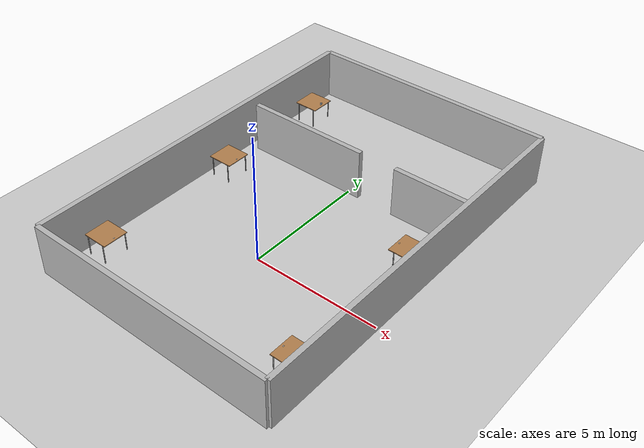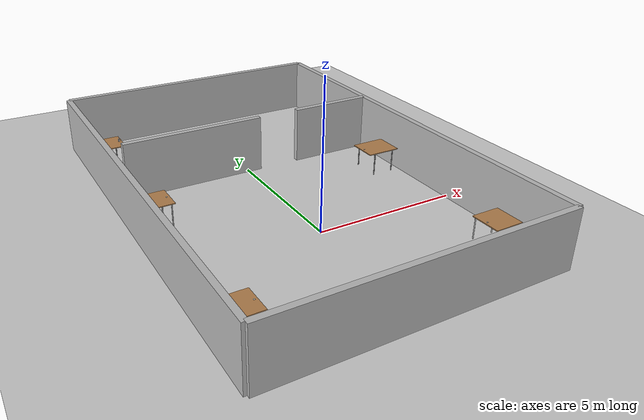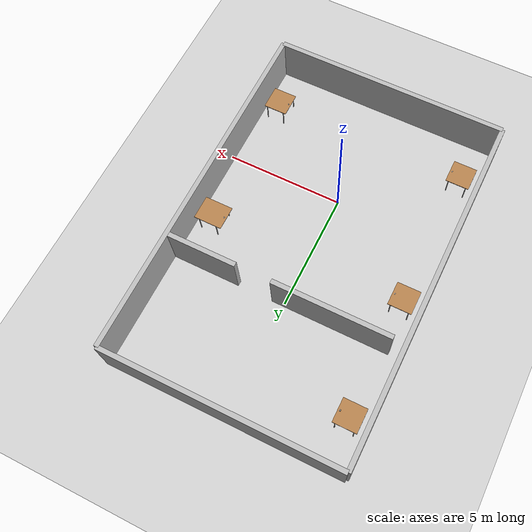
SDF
<?xml version="1.0" ?>
<sdf version="1.4">
  <world name="default">
    <physics type="ode">
      <gravity>0 0 -9.81</gravity>
      <ode>
        <solver>
          <type>quick</type>
          <iters>20</iters>
          <sor>1.0</sor>
        </solver>
        <constraints>
          <cfm>0.0</cfm>
          <erp>0.2</erp>
          <contact_max_correcting_vel>100.0</contact_max_correcting_vel>
          <contact_surface_layer>0.0</contact_surface_layer>
        </constraints>
      </ode>
      <real_time_update_rate>1000</real_time_update_rate>
      <max_step_size>0.001</max_step_size>
    </physics>

    <!-- A global light source -->
    <include>
      <uri>model://sun</uri>
    </include>

    <!-- A ground plane -->
    <include>
      <uri>model://ground_plane</uri>
    </include>

    <model name='office_room_table_111'>
      <static>1</static>
      <link name='link'>
        <collision name='surface'>
          <pose frame=''>0 0 0.8 0 0 0</pose>
          <geometry>
            <box>
              <size>1 1 0.03</size>
            </box>
          </geometry>
          <surface>
            <bounce/>
            <friction>
              <ode/>
              <torsional>
                <ode/>
              </torsional>
            </friction>
            <contact>
              <ode/>
            </contact>
          </surface>
          <max_contacts>10</max_contacts>
        </collision>
        <visual name='visual1'>
          <pose frame=''>0 0 0.8 0 0 0</pose>
          <geometry>
            <box>
              <size>1 1 0.03</size>
            </box>
          </geometry>
          <material>
            <script>
              <uri>file://media/materials/scripts/gazebo.material</uri>
              <name>Gazebo/Wood</name>
            </script>
          </material>
        </visual>
        <collision name='front_left_leg'>
          <pose frame=''>0.38 0.48 0.4 0 -0 0</pose>
          <geometry>
            <cylinder>
              <radius>0.02</radius>
              <length>0.8</length>
            </cylinder>
          </geometry>
          <surface>
            <bounce/>
            <friction>
              <ode/>
              <torsional>
                <ode/>
              </torsional>
            </friction>
            <contact>
              <ode/>
            </contact>
          </surface>
          <max_contacts>10</max_contacts>
        </collision>
        <visual name='front_left_leg'>
          <pose frame=''>0.38 0.48 0.4 0 -0 0</pose>
          <geometry>
            <cylinder>
              <radius>0.02</radius>
              <length>0.8</length>
            </cylinder>
          </geometry>
          <material>
            <script>
              <uri>file://media/materials/scripts/gazebo.material</uri>
              <name>Gazebo/Grey</name>
            </script>
          </material>
        </visual>
        <collision name='front_right_leg'>
          <pose frame=''>0.38 -0.48 0.4 0 -0 0</pose>
          <geometry>
            <cylinder>
              <radius>0.02</radius>
              <length>0.8</length>
            </cylinder>
          </geometry>
          <surface>
            <bounce/>
            <friction>
              <ode/>
              <torsional>
                <ode/>
              </torsional>
            </friction>
            <contact>
              <ode/>
            </contact>
          </surface>
          <max_contacts>10</max_contacts>
        </collision>
        <visual name='front_right_leg'>
          <pose frame=''>0.38 -0.48 0.4 0 -0 0</pose>
          <geometry>
            <cylinder>
              <radius>0.02</radius>
              <length>0.8</length>
            </cylinder>
          </geometry>
          <material>
            <script>
              <uri>file://media/materials/scripts/gazebo.material</uri>
              <name>Gazebo/Grey</name>
            </script>
          </material>
        </visual>
        <collision name='back_right_leg'>
          <pose frame=''>-0.38 -0.48 0.4 0 -0 0</pose>
          <geometry>
            <cylinder>
              <radius>0.02</radius>
              <length>0.8</length>
            </cylinder>
          </geometry>
          <surface>
            <bounce/>
            <friction>
              <ode/>
              <torsional>
                <ode/>
              </torsional>
            </friction>
            <contact>
              <ode/>
            </contact>
          </surface>
          <max_contacts>10</max_contacts>
        </collision>
        <visual name='back_right_leg'>
          <pose frame=''>-0.38 -0.48 0.4 0 -0 0</pose>
          <geometry>
            <cylinder>
              <radius>0.02</radius>
              <length>0.8</length>
            </cylinder>
          </geometry>
          <material>
            <script>
              <uri>file://media/materials/scripts/gazebo.material</uri>
              <name>Gazebo/Grey</name>
            </script>
          </material>
        </visual>
        <collision name='back_left_leg'>
          <pose frame=''>-0.38 0.48 0.4 0 -0 0</pose>
          <geometry>
            <cylinder>
              <radius>0.02</radius>
              <length>0.8</length>
            </cylinder>
          </geometry>
          <surface>
            <bounce/>
            <friction>
              <ode/>
              <torsional>
                <ode/>
              </torsional>
            </friction>
            <contact>
              <ode/>
            </contact>
          </surface>
          <max_contacts>10</max_contacts>
        </collision>
        <visual name='back_left_leg'>
          <pose frame=''>-0.38 0.48 0.4 0 -0 0</pose>
          <geometry>
            <cylinder>
              <radius>0.02</radius>
              <length>0.8</length>
            </cylinder>
          </geometry>
          <material>
            <script>
              <uri>file://media/materials/scripts/gazebo.material</uri>
              <name>Gazebo/Grey</name>
            </script>
          </material>
        </visual>
        <velocity_decay>
          <linear>0</linear>
          <angular>0</angular>
        </velocity_decay>
        <self_collide>0</self_collide>
        <kinematic>0</kinematic>
        <gravity>1</gravity>
        <enable_wind>0</enable_wind>
      </link>
      <pose frame=''>4.2 -3 0 0 0 0</pose>
    </model>
    <model name='aruco_marker_original_111'>
      <static>1</static>
      <link name='marker'>
        <inertial>
          <mass>0.1</mass>
          <inertia>
            <ixx>0</ixx>
            <ixy>0</ixy>
            <ixz>0</ixz>
            <iyy>0</iyy>
            <iyz>0</iyz>
            <izz>0</izz>
          </inertia>
        </inertial>
        <visual name='visual'>
          <pose frame=''>0 0 0 0 -0 1.57</pose>
          <geometry>
            <box>
              <size>0.05 0.05 0.001</size>
            </box>
          </geometry>
          <material>
            <script>
              <uri>model://aruco_marker_original_111/material/scripts</uri>
              <uri>model://aruco_marker_original_111/material/textures</uri>
              <name>Aruco/aruco_marker_original_111</name>
            </script>
          </material>
        </visual>
        <collision name='collision'>
          <geometry>
            <box>
              <size>0.05 0.05 0.001</size>
            </box>
          </geometry>
          <surface>
            <bounce/>
            <friction>
              <ode/>
              <torsional>
                <ode/>
              </torsional>
            </friction>
            <contact>
              <ode/>
            </contact>
          </surface>
          <max_contacts>10</max_contacts>
        </collision>
        <self_collide>1</self_collide>
        <kinematic>0</kinematic>
        <gravity>1</gravity>
        <enable_wind>0</enable_wind>
      </link>
      <pose frame=''>3.8 -3 0.815 0 0 0</pose>
    </model>

    <model name='office_room_table_26'>
      <static>1</static>
      <link name='link'>
        <collision name='surface'>
          <pose frame=''>0 0 0.8 0 0 0</pose>
          <geometry>
            <box>
              <size>1 1 0.03</size>
            </box>
          </geometry>
          <surface>
            <bounce/>
            <friction>
              <ode/>
              <torsional>
                <ode/>
              </torsional>
            </friction>
            <contact>
              <ode/>
            </contact>
          </surface>
          <max_contacts>10</max_contacts>
        </collision>
        <visual name='visual1'>
          <pose frame=''>0 0 0.8 0 0 0</pose>
          <geometry>
            <box>
              <size>1 1 0.03</size>
            </box>
          </geometry>
          <material>
            <script>
              <uri>file://media/materials/scripts/gazebo.material</uri>
              <name>Gazebo/Wood</name>
            </script>
          </material>
        </visual>
        <collision name='front_left_leg'>
          <pose frame=''>0.38 0.48 0.4 0 -0 0</pose>
          <geometry>
            <cylinder>
              <radius>0.02</radius>
              <length>0.8</length>
            </cylinder>
          </geometry>
          <surface>
            <bounce/>
            <friction>
              <ode/>
              <torsional>
                <ode/>
              </torsional>
            </friction>
            <contact>
              <ode/>
            </contact>
          </surface>
          <max_contacts>10</max_contacts>
        </collision>
        <visual name='front_left_leg'>
          <pose frame=''>0.38 0.48 0.4 0 -0 0</pose>
          <geometry>
            <cylinder>
              <radius>0.02</radius>
              <length>0.8</length>
            </cylinder>
          </geometry>
          <material>
            <script>
              <uri>file://media/materials/scripts/gazebo.material</uri>
              <name>Gazebo/Grey</name>
            </script>
          </material>
        </visual>
        <collision name='front_right_leg'>
          <pose frame=''>0.38 -0.48 0.4 0 -0 0</pose>
          <geometry>
            <cylinder>
              <radius>0.02</radius>
              <length>0.8</length>
            </cylinder>
          </geometry>
          <surface>
            <bounce/>
            <friction>
              <ode/>
              <torsional>
                <ode/>
              </torsional>
            </friction>
            <contact>
              <ode/>
            </contact>
          </surface>
          <max_contacts>10</max_contacts>
        </collision>
        <visual name='front_right_leg'>
          <pose frame=''>0.38 -0.48 0.4 0 -0 0</pose>
          <geometry>
            <cylinder>
              <radius>0.02</radius>
              <length>0.8</length>
            </cylinder>
          </geometry>
          <material>
            <script>
              <uri>file://media/materials/scripts/gazebo.material</uri>
              <name>Gazebo/Grey</name>
            </script>
          </material>
        </visual>
        <collision name='back_right_leg'>
          <pose frame=''>-0.38 -0.48 0.4 0 -0 0</pose>
          <geometry>
            <cylinder>
              <radius>0.02</radius>
              <length>0.8</length>
            </cylinder>
          </geometry>
          <surface>
            <bounce/>
            <friction>
              <ode/>
              <torsional>
                <ode/>
              </torsional>
            </friction>
            <contact>
              <ode/>
            </contact>
          </surface>
          <max_contacts>10</max_contacts>
        </collision>
        <visual name='back_right_leg'>
          <pose frame=''>-0.38 -0.48 0.4 0 -0 0</pose>
          <geometry>
            <cylinder>
              <radius>0.02</radius>
              <length>0.8</length>
            </cylinder>
          </geometry>
          <material>
            <script>
              <uri>file://media/materials/scripts/gazebo.material</uri>
              <name>Gazebo/Grey</name>
            </script>
          </material>
        </visual>
        <collision name='back_left_leg'>
          <pose frame=''>-0.38 0.48 0.4 0 -0 0</pose>
          <geometry>
            <cylinder>
              <radius>0.02</radius>
              <length>0.8</length>
            </cylinder>
          </geometry>
          <surface>
            <bounce/>
            <friction>
              <ode/>
              <torsional>
                <ode/>
              </torsional>
            </friction>
            <contact>
              <ode/>
            </contact>
          </surface>
          <max_contacts>10</max_contacts>
        </collision>
        <visual name='back_left_leg'>
          <pose frame=''>-0.38 0.48 0.4 0 -0 0</pose>
          <geometry>
            <cylinder>
              <radius>0.02</radius>
              <length>0.8</length>
            </cylinder>
          </geometry>
          <material>
            <script>
              <uri>file://media/materials/scripts/gazebo.material</uri>
              <name>Gazebo/Grey</name>
            </script>
          </material>
        </visual>
        <velocity_decay>
          <linear>0</linear>
          <angular>0</angular>
        </velocity_decay>
        <self_collide>0</self_collide>
        <kinematic>0</kinematic>
        <gravity>1</gravity>
        <enable_wind>0</enable_wind>
      </link>
      <pose frame=''>-4.2 -3 0 0 0 0</pose>
    </model>
    <model name='aruco_marker_original_26'>
      <static>1</static>
      <link name='marker'>
        <inertial>
          <mass>0.1</mass>
          <inertia>
            <ixx>0</ixx>
            <ixy>0</ixy>
            <ixz>0</ixz>
            <iyy>0</iyy>
            <iyz>0</iyz>
            <izz>0</izz>
          </inertia>
        </inertial>
        <visual name='visual'>
          <pose frame=''>0 0 0 0 -0 1.57</pose>
          <geometry>
            <box>
              <size>0.05 0.05 0.001</size>
            </box>
          </geometry>
          <material>
            <script>
              <uri>model://aruco_marker_original_26/material/scripts</uri>
              <uri>model://aruco_marker_original_26/material/textures</uri>
              <name>Aruco/aruco_marker_original_26</name>
            </script>
          </material>
        </visual>
        <collision name='collision'>
          <geometry>
            <box>
              <size>0.05 0.05 0.001</size>
            </box>
          </geometry>
          <surface>
            <bounce/>
            <friction>
              <ode/>
              <torsional>
                <ode/>
              </torsional>
            </friction>
            <contact>
              <ode/>
            </contact>
          </surface>
          <max_contacts>10</max_contacts>
        </collision>
        <self_collide>1</self_collide>
        <kinematic>0</kinematic>
        <gravity>1</gravity>
        <enable_wind>0</enable_wind>
      </link>
      <pose frame=''>-3.8 -3 0.815 0 0 0</pose>
    </model>

    <model name='office_room_table_63'>
      <static>1</static>
      <link name='link'>
        <collision name='surface'>
          <pose frame=''>0 0 0.8 0 0 0</pose>
          <geometry>
            <box>
              <size>1 1 0.03</size>
            </box>
          </geometry>
          <surface>
            <bounce/>
            <friction>
              <ode/>
              <torsional>
                <ode/>
              </torsional>
            </friction>
            <contact>
              <ode/>
            </contact>
          </surface>
          <max_contacts>10</max_contacts>
        </collision>
        <visual name='visual1'>
          <pose frame=''>0 0 0.8 0 0 0</pose>
          <geometry>
            <box>
              <size>1 1 0.03</size>
            </box>
          </geometry>
          <material>
            <script>
              <uri>file://media/materials/scripts/gazebo.material</uri>
              <name>Gazebo/Wood</name>
            </script>
          </material>
        </visual>
        <collision name='front_left_leg'>
          <pose frame=''>0.38 0.48 0.4 0 -0 0</pose>
          <geometry>
            <cylinder>
              <radius>0.02</radius>
              <length>0.8</length>
            </cylinder>
          </geometry>
          <surface>
            <bounce/>
            <friction>
              <ode/>
              <torsional>
                <ode/>
              </torsional>
            </friction>
            <contact>
              <ode/>
            </contact>
          </surface>
          <max_contacts>10</max_contacts>
        </collision>
        <visual name='front_left_leg'>
          <pose frame=''>0.38 0.48 0.4 0 -0 0</pose>
          <geometry>
            <cylinder>
              <radius>0.02</radius>
              <length>0.8</length>
            </cylinder>
          </geometry>
          <material>
            <script>
              <uri>file://media/materials/scripts/gazebo.material</uri>
              <name>Gazebo/Grey</name>
            </script>
          </material>
        </visual>
        <collision name='front_right_leg'>
          <pose frame=''>0.38 -0.48 0.4 0 -0 0</pose>
          <geometry>
            <cylinder>
              <radius>0.02</radius>
              <length>0.8</length>
            </cylinder>
          </geometry>
          <surface>
            <bounce/>
            <friction>
              <ode/>
              <torsional>
                <ode/>
              </torsional>
            </friction>
            <contact>
              <ode/>
            </contact>
          </surface>
          <max_contacts>10</max_contacts>
        </collision>
        <visual name='front_right_leg'>
          <pose frame=''>0.38 -0.48 0.4 0 -0 0</pose>
          <geometry>
            <cylinder>
              <radius>0.02</radius>
              <length>0.8</length>
            </cylinder>
          </geometry>
          <material>
            <script>
              <uri>file://media/materials/scripts/gazebo.material</uri>
              <name>Gazebo/Grey</name>
            </script>
          </material>
        </visual>
        <collision name='back_right_leg'>
          <pose frame=''>-0.38 -0.48 0.4 0 -0 0</pose>
          <geometry>
            <cylinder>
              <radius>0.02</radius>
              <length>0.8</length>
            </cylinder>
          </geometry>
          <surface>
            <bounce/>
            <friction>
              <ode/>
              <torsional>
                <ode/>
              </torsional>
            </friction>
            <contact>
              <ode/>
            </contact>
          </surface>
          <max_contacts>10</max_contacts>
        </collision>
        <visual name='back_right_leg'>
          <pose frame=''>-0.38 -0.48 0.4 0 -0 0</pose>
          <geometry>
            <cylinder>
              <radius>0.02</radius>
              <length>0.8</length>
            </cylinder>
          </geometry>
          <material>
            <script>
              <uri>file://media/materials/scripts/gazebo.material</uri>
              <name>Gazebo/Grey</name>
            </script>
          </material>
        </visual>
        <collision name='back_left_leg'>
          <pose frame=''>-0.38 0.48 0.4 0 -0 0</pose>
          <geometry>
            <cylinder>
              <radius>0.02</radius>
              <length>0.8</length>
            </cylinder>
          </geometry>
          <surface>
            <bounce/>
            <friction>
              <ode/>
              <torsional>
                <ode/>
              </torsional>
            </friction>
            <contact>
              <ode/>
            </contact>
          </surface>
          <max_contacts>10</max_contacts>
        </collision>
        <visual name='back_left_leg'>
          <pose frame=''>-0.38 0.48 0.4 0 -0 0</pose>
          <geometry>
            <cylinder>
              <radius>0.02</radius>
              <length>0.8</length>
            </cylinder>
          </geometry>
          <material>
            <script>
              <uri>file://media/materials/scripts/gazebo.material</uri>
              <name>Gazebo/Grey</name>
            </script>
          </material>
        </visual>
        <velocity_decay>
          <linear>0</linear>
          <angular>0</angular>
        </velocity_decay>
        <self_collide>0</self_collide>
        <kinematic>0</kinematic>
        <gravity>1</gravity>
        <enable_wind>0</enable_wind>
      </link>
      <pose frame=''>-4.2 3 0 0 0 0</pose>
    </model>
    <model name='aruco_marker_original_63'>
      <static>1</static>
      <link name='marker'>
        <inertial>
          <mass>0.1</mass>
          <inertia>
            <ixx>0</ixx>
            <ixy>0</ixy>
            <ixz>0</ixz>
            <iyy>0</iyy>
            <iyz>0</iyz>
            <izz>0</izz>
          </inertia>
        </inertial>
        <visual name='visual'>
          <pose frame=''>0 0 0 0 -0 1.57</pose>
          <geometry>
            <box>
              <size>0.05 0.05 0.001</size>
            </box>
          </geometry>
          <material>
            <script>
              <uri>model://aruco_marker_original_63/material/scripts</uri>
              <uri>model://aruco_marker_original_63/material/textures</uri>
              <name>Aruco/aruco_marker_original_63</name>
            </script>
          </material>
        </visual>
        <collision name='collision'>
          <geometry>
            <box>
              <size>0.05 0.05 0.001</size>
            </box>
          </geometry>
          <surface>
            <bounce/>
            <friction>
              <ode/>
              <torsional>
                <ode/>
              </torsional>
            </friction>
            <contact>
              <ode/>
            </contact>
          </surface>
          <max_contacts>10</max_contacts>
        </collision>
        <self_collide>1</self_collide>
        <kinematic>0</kinematic>
        <gravity>1</gravity>
        <enable_wind>0</enable_wind>
      </link>
      <pose frame=''>-3.8 3 0.815 0 0 0</pose>
    </model>

    <model name='office_room_table_238'>
      <static>1</static>
      <link name='link'>
        <collision name='surface'>
          <pose frame=''>0 0 0.8 0 0 0</pose>
          <geometry>
            <box>
              <size>1.2 1 0.03</size>
            </box>
          </geometry>
          <surface>
            <bounce/>
            <friction>
              <ode/>
              <torsional>
                <ode/>
              </torsional>
            </friction>
            <contact>
              <ode/>
            </contact>
          </surface>
          <max_contacts>10</max_contacts>
        </collision>
        <visual name='visual1'>
          <pose frame=''>0 0 0.8 0 0 0</pose>
          <geometry>
            <box>
              <size>1.2 1 0.03</size>
            </box>
          </geometry>
          <material>
            <script>
              <uri>file://media/materials/scripts/gazebo.material</uri>
              <name>Gazebo/Wood</name>
            </script>
          </material>
        </visual>
        <collision name='front_left_leg'>
          <pose frame=''>0.38 0.48 0.4 0 -0 0</pose>
          <geometry>
            <cylinder>
              <radius>0.02</radius>
              <length>0.8</length>
            </cylinder>
          </geometry>
          <surface>
            <bounce/>
            <friction>
              <ode/>
              <torsional>
                <ode/>
              </torsional>
            </friction>
            <contact>
              <ode/>
            </contact>
          </surface>
          <max_contacts>10</max_contacts>
        </collision>
        <visual name='front_left_leg'>
          <pose frame=''>0.38 0.48 0.4 0 -0 0</pose>
          <geometry>
            <cylinder>
              <radius>0.02</radius>
              <length>0.8</length>
            </cylinder>
          </geometry>
          <material>
            <script>
              <uri>file://media/materials/scripts/gazebo.material</uri>
              <name>Gazebo/Grey</name>
            </script>
          </material>
        </visual>
        <collision name='front_right_leg'>
          <pose frame=''>0.38 -0.48 0.4 0 -0 0</pose>
          <geometry>
            <cylinder>
              <radius>0.02</radius>
              <length>0.8</length>
            </cylinder>
          </geometry>
          <surface>
            <bounce/>
            <friction>
              <ode/>
              <torsional>
                <ode/>
              </torsional>
            </friction>
            <contact>
              <ode/>
            </contact>
          </surface>
          <max_contacts>10</max_contacts>
        </collision>
        <visual name='front_right_leg'>
          <pose frame=''>0.38 -0.48 0.4 0 -0 0</pose>
          <geometry>
            <cylinder>
              <radius>0.02</radius>
              <length>0.8</length>
            </cylinder>
          </geometry>
          <material>
            <script>
              <uri>file://media/materials/scripts/gazebo.material</uri>
              <name>Gazebo/Grey</name>
            </script>
          </material>
        </visual>
        <collision name='back_right_leg'>
          <pose frame=''>-0.38 -0.48 0.4 0 -0 0</pose>
          <geometry>
            <cylinder>
              <radius>0.02</radius>
              <length>0.8</length>
            </cylinder>
          </geometry>
          <surface>
            <bounce/>
            <friction>
              <ode/>
              <torsional>
                <ode/>
              </torsional>
            </friction>
            <contact>
              <ode/>
            </contact>
          </surface>
          <max_contacts>10</max_contacts>
        </collision>
        <visual name='back_right_leg'>
          <pose frame=''>-0.38 -0.48 0.4 0 -0 0</pose>
          <geometry>
            <cylinder>
              <radius>0.02</radius>
              <length>0.8</length>
            </cylinder>
          </geometry>
          <material>
            <script>
              <uri>file://media/materials/scripts/gazebo.material</uri>
              <name>Gazebo/Grey</name>
            </script>
          </material>
        </visual>
        <collision name='back_left_leg'>
          <pose frame=''>-0.38 0.48 0.4 0 -0 0</pose>
          <geometry>
            <cylinder>
              <radius>0.02</radius>
              <length>0.8</length>
            </cylinder>
          </geometry>
          <surface>
            <bounce/>
            <friction>
              <ode/>
              <torsional>
                <ode/>
              </torsional>
            </friction>
            <contact>
              <ode/>
            </contact>
          </surface>
          <max_contacts>10</max_contacts>
        </collision>
        <visual name='back_left_leg'>
          <pose frame=''>-0.38 0.48 0.4 0 -0 0</pose>
          <geometry>
            <cylinder>
              <radius>0.02</radius>
              <length>0.8</length>
            </cylinder>
          </geometry>
          <material>
            <script>
              <uri>file://media/materials/scripts/gazebo.material</uri>
              <name>Gazebo/Grey</name>
            </script>
          </material>
        </visual>
        <velocity_decay>
          <linear>0</linear>
          <angular>0</angular>
        </velocity_decay>
        <self_collide>0</self_collide>
        <kinematic>0</kinematic>
        <gravity>1</gravity>
        <enable_wind>0</enable_wind>
      </link>
      <pose frame=''>4.2 3 0 0 0 0</pose>
    </model>
    <model name='aruco_marker_original_238'>
      <static>1</static>
      <link name='marker'>
        <inertial>
          <mass>0.1</mass>
          <inertia>
            <ixx>0</ixx>
            <ixy>0</ixy>
            <ixz>0</ixz>
            <iyy>0</iyy>
            <iyz>0</iyz>
            <izz>0</izz>
          </inertia>
        </inertial>
        <visual name='visual'>
          <pose frame=''>0 0 0 0 -0 1.57</pose>
          <geometry>
            <box>
              <size>0.05 0.05 0.001</size>
            </box>
          </geometry>
          <material>
            <script>
              <uri>model://aruco_marker_original_238/material/scripts</uri>
              <uri>model://aruco_marker_original_238/material/textures</uri>
              <name>Aruco/aruco_marker_original_238</name>
            </script>
          </material>
        </visual>
        <collision name='collision'>
          <geometry>
            <box>
              <size>0.05 0.05 0.001</size>
            </box>
          </geometry>
          <surface>
            <bounce/>
            <friction>
              <ode/>
              <torsional>
                <ode/>
              </torsional>
            </friction>
            <contact>
              <ode/>
            </contact>
          </surface>
          <max_contacts>10</max_contacts>
        </collision>
        <self_collide>1</self_collide>
        <kinematic>0</kinematic>
        <gravity>1</gravity>
        <enable_wind>0</enable_wind>
      </link>
      <pose frame=''>3.7 3 0.815 0 0 0</pose>
    </model>

    <model name='office_room_table_333'>
      <static>1</static>
      <link name='link'>
        <collision name='surface'>
          <pose frame=''>0 0 0.8 0 0 0</pose>
          <geometry>
            <box>
              <size>1 1 0.03</size>
            </box>
          </geometry>
          <surface>
            <bounce/>
            <friction>
              <ode/>
              <torsional>
                <ode/>
              </torsional>
            </friction>
            <contact>
              <ode/>
            </contact>
          </surface>
          <max_contacts>10</max_contacts>
        </collision>
        <visual name='visual1'>
          <pose frame=''>0 0 0.8 0 0 0</pose>
          <geometry>
            <box>
              <size>1 1 0.03</size>
            </box>
          </geometry>
          <material>
            <script>
              <uri>file://media/materials/scripts/gazebo.material</uri>
              <name>Gazebo/Wood</name>
            </script>
          </material>
        </visual>
        <collision name='front_left_leg'>
          <pose frame=''>0.38 0.48 0.4 0 -0 0</pose>
          <geometry>
            <cylinder>
              <radius>0.02</radius>
              <length>0.8</length>
            </cylinder>
          </geometry>
          <surface>
            <bounce/>
            <friction>
              <ode/>
              <torsional>
                <ode/>
              </torsional>
            </friction>
            <contact>
              <ode/>
            </contact>
          </surface>
          <max_contacts>10</max_contacts>
        </collision>
        <visual name='front_left_leg'>
          <pose frame=''>0.38 0.48 0.4 0 -0 0</pose>
          <geometry>
            <cylinder>
              <radius>0.02</radius>
              <length>0.8</length>
            </cylinder>
          </geometry>
          <material>
            <script>
              <uri>file://media/materials/scripts/gazebo.material</uri>
              <name>Gazebo/Grey</name>
            </script>
          </material>
        </visual>
        <collision name='front_right_leg'>
          <pose frame=''>0.38 -0.48 0.4 0 -0 0</pose>
          <geometry>
            <cylinder>
              <radius>0.02</radius>
              <length>0.8</length>
            </cylinder>
          </geometry>
          <surface>
            <bounce/>
            <friction>
              <ode/>
              <torsional>
                <ode/>
              </torsional>
            </friction>
            <contact>
              <ode/>
            </contact>
          </surface>
          <max_contacts>10</max_contacts>
        </collision>
        <visual name='front_right_leg'>
          <pose frame=''>0.38 -0.48 0.4 0 -0 0</pose>
          <geometry>
            <cylinder>
              <radius>0.02</radius>
              <length>0.8</length>
            </cylinder>
          </geometry>
          <material>
            <script>
              <uri>file://media/materials/scripts/gazebo.material</uri>
              <name>Gazebo/Grey</name>
            </script>
          </material>
        </visual>
        <collision name='back_right_leg'>
          <pose frame=''>-0.38 -0.48 0.4 0 -0 0</pose>
          <geometry>
            <cylinder>
              <radius>0.02</radius>
              <length>0.8</length>
            </cylinder>
          </geometry>
          <surface>
            <bounce/>
            <friction>
              <ode/>
              <torsional>
                <ode/>
              </torsional>
            </friction>
            <contact>
              <ode/>
            </contact>
          </surface>
          <max_contacts>10</max_contacts>
        </collision>
        <visual name='back_right_leg'>
          <pose frame=''>-0.38 -0.48 0.4 0 -0 0</pose>
          <geometry>
            <cylinder>
              <radius>0.02</radius>
              <length>0.8</length>
            </cylinder>
          </geometry>
          <material>
            <script>
              <uri>file://media/materials/scripts/gazebo.material</uri>
              <name>Gazebo/Grey</name>
            </script>
          </material>
        </visual>
        <collision name='back_left_leg'>
          <pose frame=''>-0.38 0.48 0.4 0 -0 0</pose>
          <geometry>
            <cylinder>
              <radius>0.02</radius>
              <length>0.8</length>
            </cylinder>
          </geometry>
          <surface>
            <bounce/>
            <friction>
              <ode/>
              <torsional>
                <ode/>
              </torsional>
            </friction>
            <contact>
              <ode/>
            </contact>
          </surface>
          <max_contacts>10</max_contacts>
        </collision>
        <visual name='back_left_leg'>
          <pose frame=''>-0.38 0.48 0.4 0 -0 0</pose>
          <geometry>
            <cylinder>
              <radius>0.02</radius>
              <length>0.8</length>
            </cylinder>
          </geometry>
          <material>
            <script>
              <uri>file://media/materials/scripts/gazebo.material</uri>
              <name>Gazebo/Grey</name>
            </script>
          </material>
        </visual>
        <velocity_decay>
          <linear>0</linear>
          <angular>0</angular>
        </velocity_decay>
        <self_collide>0</self_collide>
        <kinematic>0</kinematic>
        <gravity>1</gravity>
        <enable_wind>0</enable_wind>
      </link>
      <pose frame=''>-4.2 8 0 0 0 0</pose>
    </model>
    <model name='aruco_cube_333'>
      <static>0</static>
      <link name='link'>
        <inertial>
          <mass>0.05</mass>
          <inertia>
            <ixx>5.2083e-05</ixx>
            <ixy>0</ixy>
            <ixz>0</ixz>
            <iyy>5.2083e-05</iyy>
            <iyz>0</iyz>
            <izz>2.0833e-05</izz>
          </inertia>
        </inertial>
        <collision name='colision'>
          <pose frame=''>0 0 0 0 -0 0</pose>
          <geometry>
            <box>
              <size>0.05 0.05 0.1</size>
            </box>
          </geometry>
          <surface>
            <friction>
              <ode>
                <mu>30</mu>
                <mu2>30</mu2>
                <fdir1>0 0 0</fdir1>
              </ode>
              <torsional>
                <ode/>
              </torsional>
            </friction>
            <contact>
              <ode>
                <kp>1e+06</kp>
                <kd>100</kd>
                <min_depth>0.0025</min_depth>
                <max_vel>1</max_vel>
              </ode>
            </contact>
            <bounce/>
          </surface>
          <max_contacts>10</max_contacts>
        </collision>
        <visual name='visual1'>
          <pose frame=''>0 0 0 0 0 0</pose>
          <geometry>
              <box>
                <size>0.05 0.05 0.1</size>
              </box>
          </geometry>
        </visual>
        <velocity_decay>
          <linear>0</linear>
          <angular>0</angular>
        </velocity_decay>
        <self_collide>0</self_collide>
        <kinematic>0</kinematic>
        <gravity>1</gravity>
        <enable_wind>0</enable_wind>
      </link>
      <pose frame=''>-3.8 8 0.865 0 0 0</pose>
    </model>

    <model name="wall_1_model">
      <pose>0 -5 1 0 0 0</pose>
      <static>true</static>
      <link name="wall_1_body">
        <inertial>
          <mass>1.0</mass>
          <inertia>
            <ixx>1.0</ixx>
            <ixy>0.0</ixy>
            <ixz>0.0</ixz>
            <iyy>1.0</iyy>
            <iyz>0.0</iyz>
            <izz>1.0</izz>
          </inertia>
        </inertial>
        <collision name="collision">
          <geometry>
            <box>
              <size>10 0.2 2</size>
            </box>
          </geometry>
        </collision>
        <visual name="visual">
          <geometry>
            <box>
              <size>10 0.2 2</size>
            </box>
          </geometry>
        </visual>
      </link>
    </model>

    <model name="wall_2_model">
      <pose>0 10 1 0 0 0</pose>
      <static>true</static>
      <link name="wall_2_body">
        <inertial>
          <mass>1.0</mass>
          <inertia>
            <ixx>1.0</ixx>
            <ixy>0.0</ixy>
            <ixz>0.0</ixz>
            <iyy>1.0</iyy>
            <iyz>0.0</iyz>
            <izz>1.0</izz>
          </inertia>
        </inertial>
        <collision name="collision">
          <geometry>
            <box>
              <size>10 0.2 2</size>
            </box>
          </geometry>
        </collision>
        <visual name="visual">
          <geometry>
            <box>
              <size>10 0.2 2</size>
            </box>
          </geometry>
        </visual>
      </link>
    </model>

    <model name="wall_3_model">
      <pose>-5 2.5 1 0 0 0</pose>
      <static>true</static>
      <link name="wall_3_body">
        <inertial>
          <mass>1.0</mass>
          <inertia>
            <ixx>1.0</ixx>
            <ixy>0.0</ixy>
            <ixz>0.0</ixz>
            <iyy>1.0</iyy>
            <iyz>0.0</iyz>
            <izz>1.0</izz>
          </inertia>
        </inertial>
        <collision name="collision">
          <geometry>
            <box>
              <size>0.2 15 2</size>
            </box>
          </geometry>
        </collision>
        <visual name="visual">
          <geometry>
            <box>
              <size>0.2 15 2</size>
            </box>
          </geometry>
        </visual>
      </link>
    </model>

    <model name="wall_4_model">
      <pose>5 2.5 1 0 0 0</pose>
      <static>true</static>
      <link name="wall_4_body">
        <inertial>
          <mass>1.0</mass>
          <inertia>
            <ixx>1.0</ixx>
            <ixy>0.0</ixy>
            <ixz>0.0</ixz>
            <iyy>1.0</iyy>
            <iyz>0.0</iyz>
            <izz>1.0</izz>
          </inertia>
        </inertial>
        <collision name="collision">
          <geometry>
            <box>
              <size>0.2 15 2</size>
            </box>
          </geometry>
        </collision>
        <visual name="visual">
          <geometry>
            <box>
              <size>0.2 15 2</size>
            </box>
          </geometry>
        </visual>
      </link>
    </model>

    <model name="wall_5_model">
      <pose>-2 5 1 0 0 0</pose>
      <static>true</static>
      <link name="wall_5_body">
        <inertial>
          <mass>1.0</mass>
          <inertia>
            <ixx>1.0</ixx>
            <ixy>0.0</ixy>
            <ixz>0.0</ixz>
            <iyy>1.0</iyy>
            <iyz>0.0</iyz>
            <izz>1.0</izz>
          </inertia>
        </inertial>
        <collision name="collision">
          <geometry>
            <box>
              <size>5 0.2 2</size>
            </box>
          </geometry>
        </collision>
        <visual name="visual">
          <geometry>
            <box>
              <size>5 0.2 2</size>
            </box>
          </geometry>
        </visual>
      </link>
    </model>

    <model name="wall_6_model">
      <pose>3.5 5 1 0 0 0</pose>
      <static>true</static>
      <link name="wall_6_body">
        <inertial>
          <mass>1.0</mass>
          <inertia>
            <ixx>1.0</ixx>
            <ixy>0.0</ixy>
            <ixz>0.0</ixz>
            <iyy>1.0</iyy>
            <iyz>0.0</iyz>
            <izz>1.0</izz>
          </inertia>
        </inertial>
        <collision name="collision">
          <geometry>
            <box>
              <size>3 0.2 2</size>
            </box>
          </geometry>
        </collision>
        <visual name="visual">
          <geometry>
            <box>
              <size>3 0.2 2</size>
            </box>
          </geometry>
        </visual>
      </link>
    </model>

  </world>
</sdf>
